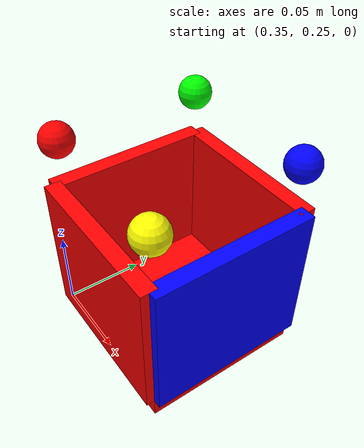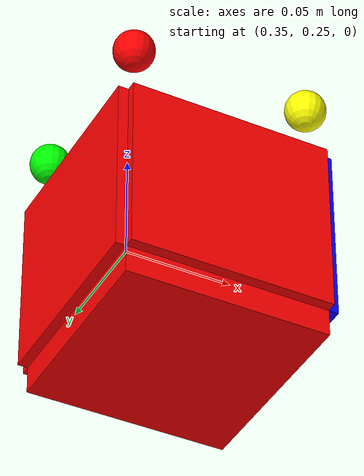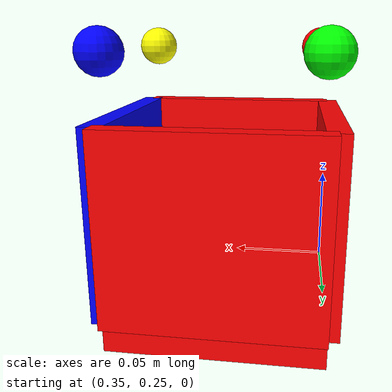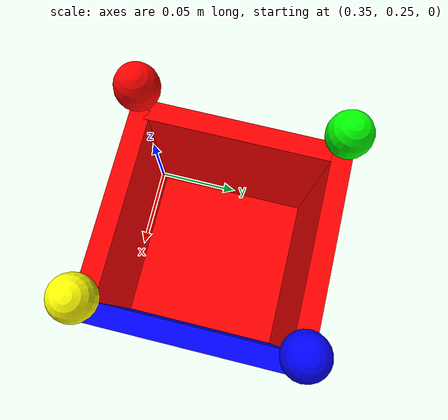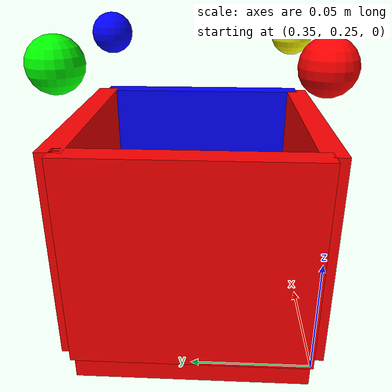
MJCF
<mujoco model="push_box">
    <worldbody>
        <body name="box_0" pos="0.4 0.3 0.0" quat="1 0 0 0">
            <geom pos="0 0 0" size="0.05 0.05 0.01" rgba="1 0 0 1.0" type="box" mass="2.0" friction="0.3 0.001 0.0001" priority="1"/>
            <geom pos="0.05 0 0.0485" size="0.005 0.05 0.045" rgba="0 0 1 1.0" type="box" mass="0.001"/>
            <site name='manboxVert1' pos="0.045 0.045 0.123" size="0.01 0.05 " rgba="0 0 1 1.0" type="sphere"/>
            <geom pos="0 0.05 0.0485" size="0.05 0.005 0.045" rgba="1 0 0 1.0" type="box" mass="0.001"/>
            <site name='manboxVert2' pos="-0.045 0.045 0.123" size="0.01 0.05 " rgba="0 1 0 1.0" type="sphere"/>
            <geom pos="-0.05 0 0.0485" size="0.005 0.05 0.045" rgba="1 0 0 1.0" type="box" mass="0.001"/>
            <site name='manboxVert3' pos="-0.045 -0.045 0.123" size="0.01 0.05 " rgba="1 0 0 1.0" type="sphere"/>
            <geom pos="0 -0.05 0.0485" size="0.05 0.005 0.045" rgba="1 0 0 1.0" type="box" mass="0.001"/>
            <site name='manboxVert4' pos="0.045 -0.045 0.123" size="0.01 0.05 " rgba="1 1 0 1.0" type="sphere"/>
            <joint name="box_joint" type="free"/>
        </body>
    </worldbody>
</mujoco>
